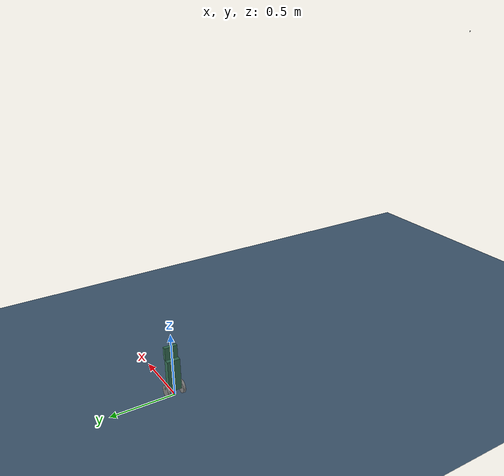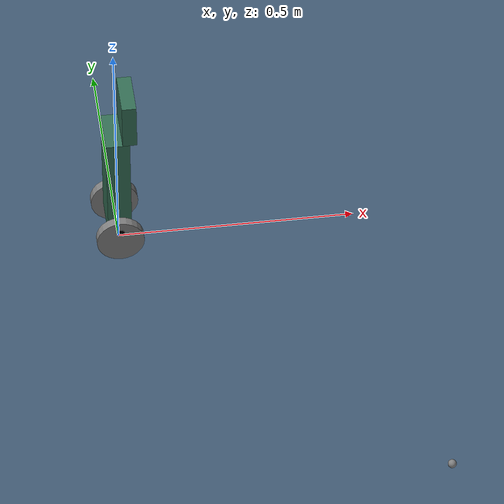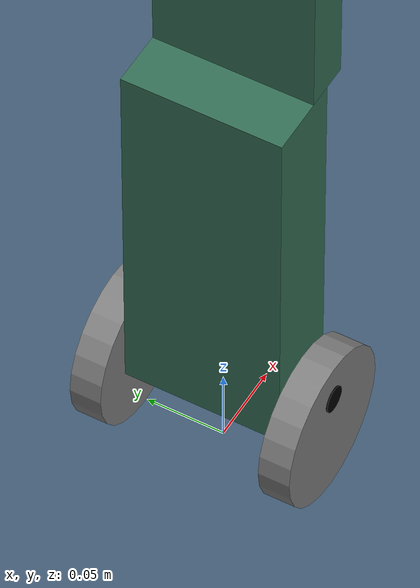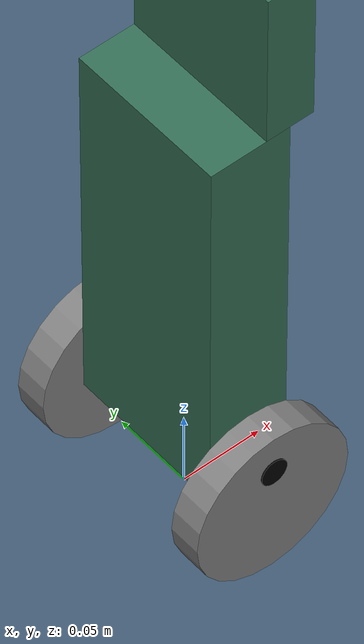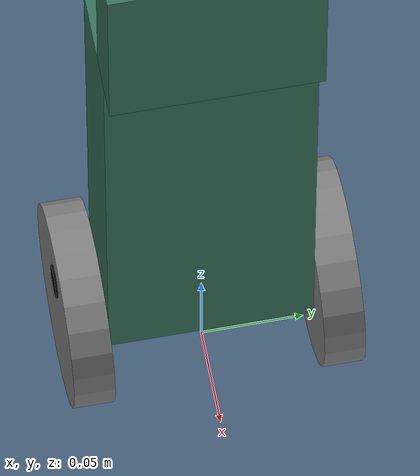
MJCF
<mujoco model="arena">
  <default>
    <default class="/"/>
    <default class="camera/"/>
    <default class="frame/"/>
  </default>
  <asset>
    <texture name="grid_texture" type="2d" builtin="checker" rgb1="0.20000000000000001 0.29999999999999999 0.40000000000000002" rgb2="0.29999999999999999 0.40000000000000002 0.5" width="100" height="100"/>
    <material name="grid" class="/" texture="grid_texture" texrepeat="80 80" reflectance="0.10000000000000001"/>
  </asset>
  <worldbody>
    <geom name="floor" class="/" type="plane" size="4 4 0.10000000000000001" material="grid"/>
    <light name="light_-2" class="/" pos="-2 -1 3" dir="2 1 -2"/>
    <light name="light_2" class="/" pos="2 -1 3" dir="-2 1 -2"/>
    <site name="camerasite" class="/" pos="0.10000000000000001 -3 2.5" euler="50 0 0"/>
    <body pos="0.10000000000000001 -3 2.5" euler="50 0 0" name="camera/">
      <camera name="camera/camera" class="camera/" mode="trackcom"/>
    </body>
    <site name="rp_site" class="/" group="3" pos="0 0 0.050000000000000003"/>
    <body pos="0 0 0.050000000000000003" name="frame/">
      <freejoint name="frame/"/>
      <body name="frame/torso">
        <geom name="frame/body" class="frame/" type="box" size="0.025000000000000001 0.050000000000000003 0.125" rgba="0.20269912000000001 0.43074269999999998 0.33218761000000002 1" mass="0.40000000000000002" pos="0 0 0.125"/>
        <body name="frame/rightwheel" pos="-0.001 -0.051000000000000004 0">
          <geom name="frame/rightwheel_cyl" class="frame/" type="cylinder" size="0.050000000000000003" friction="2 0.0050000000000000001 0.0001" mass="0.02" fromto="0 0 0 0 -0.02 0"/>
          <geom name="frame/rightwheel_marker" class="frame/" type="cylinder" size="0.0083333333333333332" rgba="0 0 0 1" friction="2 0.0050000000000000001 0.0001" fromto="0 0 0.025000000000000001 0 -0.021000000000000001 0.025000000000000001"/>
          <joint name="frame/rightwheel_joint" class="frame/" axis="0 1 0" damping="0.10000000000000001"/>
        </body>
        <body name="frame/leftwheel" pos="-0.001 0.051000000000000004 0">
          <geom name="frame/leftwheel_cyl" class="frame/" type="cylinder" size="0.050000000000000003" friction="2 0.0050000000000000001 0.0001" mass="0.02" fromto="0 0 0 0 0.02 0"/>
          <geom name="frame/leftwheel_marker" class="frame/" type="cylinder" size="0.0083333333333333332" rgba="0 0 0 1" friction="2 0.0050000000000000001 0.0001" fromto="0 0 0.025000000000000001 0 0.021000000000000001 0.025000000000000001"/>
          <joint name="frame/leftwheel_joint" class="frame/" axis="0 1 0" damping="0.10000000000000001"/>
        </body>
      </body>
      <body name="frame/head" pos="0.025000000000000001 0 0.25">
        <joint name="frame/headpitch_joint" class="frame/" axis="0 1 0" damping="0.10000000000000001"/>
        <joint name="frame/headturn_joint" class="frame/" axis="0 0 1" damping="0.10000000000000001"/>
        <geom name="frame/headgeom" class="frame/" type="box" size="0.014999999999999999 0.050000000000000003 0.050000000000000003" rgba="0.20269912000000001 0.43074269999999998 0.33218761000000002 1" mass="0.20000000000000001" pos="0 0 0.050000000000000003"/>
      </body>
      <site name="frame/imu_site" class="frame/" pos="0 0 0"/>
    </body>
  </worldbody>
  <actuator>
    <intvelocity name="frame/rightwheel_actuator" class="frame/" ctrllimited="true" forcelimited="true" ctrlrange="-20 20" forcerange="-5 5" actrange="-1000000 1000000" gear="1" joint="frame/rightwheel_joint" kp="0.20000000000000001"/>
    <intvelocity name="frame/leftwheel_actuator" class="frame/" ctrllimited="true" forcelimited="true" ctrlrange="-20 20" forcerange="-5 5" actrange="-1000000 1000000" gear="1" joint="frame/leftwheel_joint" kp="0.20000000000000001"/>
    <intvelocity name="frame/headpitch_actuator" class="frame/" actrange="-50 50" joint="frame/headpitch_joint" kp="1.5"/>
    <intvelocity name="frame/headturn_actuator" class="frame/" actrange="-50 50" joint="frame/headturn_joint" kp="1.5"/>
  </actuator>
  <sensor>
    <jointvel name="frame/rightwheel_vel_sensor" joint="frame/rightwheel_joint"/>
    <jointvel name="frame/leftwheel_vel_sensor" joint="frame/leftwheel_joint"/>
    <jointpos name="frame/headpitch_sensor" joint="frame/headpitch_joint"/>
    <jointpos name="frame/headturn_sensor" joint="frame/headturn_joint"/>
    <gyro name="frame/gyro" site="frame/imu_site"/>
    <accelerometer name="frame/accelerometer" site="frame/imu_site"/>
  </sensor>
</mujoco>
